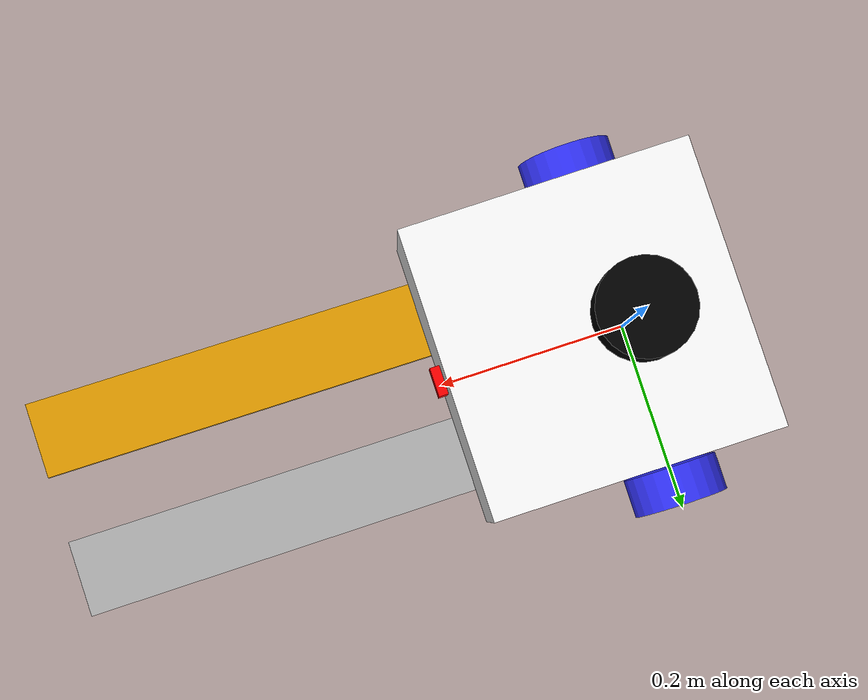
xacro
<?xml version="1.0"?>
<robot xmlns:xacro="http://www.ros.org/wiki/xacro"  name="robot">

    <xacro:include filename="robot_core.xacro" />

    <xacro:include filename="gazebo_control.xacro" />

    <xacro:include filename="lidar.xacro" />
    <xacro:include filename="camera.xacro" />

</robot>

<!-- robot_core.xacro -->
<robot xmlns:xacro="http://www.ros.org/wiki/xacro" >

    <xacro:include filename="inertial_macros.xacro"/>

    <material name="white">
        <color rgba="1 1 1 1" />
    </material>

    <material name="orange">
        <color rgba="1 0.3 0.1 1"/>
    </material>

    <material name="blue">
        <color rgba="0.2 0.2 1 1"/>
    </material>

    <material name="black">
        <color rgba="0 0 0 1"/>
    </material>

    <material name="red">
        <color rgba="1 0 0 1"/>
    </material>

    <!-- BASE LINK -->

    <link name="base_link">

    </link>

     <!-- BASE_FOOTPRINT LINK -->

    <joint name="base_footprint_joint" type="fixed">
        <parent link="base_link"/>
        <child link="base_footprint"/>
        <origin xyz="0 0 0" rpy="0 0 0"/>
    </joint>

    <link name="base_footprint">
    </link>

    <!-- CHASSIS LINK -->

    <joint name="chassis_joint" type="fixed">
        <parent link="base_link"/>
        <child link="chassis"/>
        <origin xyz="-0.1 0 0"/>
    </joint>

    <link name="chassis">
        <visual>
            <origin xyz="0.15 0 0.075"/>
            <geometry>
                <box size="0.3 0.3 0.15"/>
            </geometry>
            <material name="white"/>
        </visual>
        <collision>
            <origin xyz="0.15 0 0.075"/>
            <geometry>
                <box size="0.3 0.3 0.15"/>
            </geometry>
        </collision>
        <xacro:inertial_box mass="10" x="0.3" y="0.3" z="0.15">
            <origin xyz="0.15 0 0.075" rpy="0 0 0"/>
        </xacro:inertial_box>
    </link>

    <gazebo reference="chassis">
        <material>Gazebo/White</material>
    </gazebo>

    <!-- LEFT WHEEL LINK -->

    <joint name="left_wheel_joint" type="continuous">
        <parent link="base_link"/>
        <child link="left_wheel"/>
        <origin xyz="0 0.175 0" rpy="-${pi/2} 0 0" />
        <axis xyz="0 0 1"/>
    </joint>

    <link name="left_wheel">
        <visual>
            <geometry>
                <cylinder radius="0.05" length="0.04"/>
            </geometry>
            <material name="blue"/>
        </visual>
        <collision>
            <geometry>
                <cylinder radius="0.05" length="0.04"/>
            </geometry>
        </collision>
        <xacro:inertial_cylinder mass="0.1" length="0.04" radius="0.05">
            <origin xyz="0 0 0" rpy="0 0 0"/>
        </xacro:inertial_cylinder>
    </link>

    <gazebo reference="left_wheel">
        <material>Gazebo/Blue</material>
    </gazebo>

    <!-- RIGHT WHEEL LINK -->

    <joint name="right_wheel_joint" type="continuous">
        <parent link="base_link"/>
        <child link="right_wheel"/>
        <origin xyz="0 -0.175 0" rpy="${pi/2} 0 0" />
        <axis xyz="0 0 -1"/>
    </joint>

    <link name="right_wheel">
        <visual>
            <geometry>
                <cylinder radius="0.05" length="0.04"/>
            </geometry>
            <material name="blue"/>
        </visual>
        <collision>
            <geometry>
                <cylinder radius="0.05" length="0.04"/>
            </geometry>
        </collision>
        <xacro:inertial_cylinder mass="0.1" length="0.04" radius="0.05">
            <origin xyz="0 0 0" rpy="0 0 0"/>
        </xacro:inertial_cylinder>
    </link>

    <gazebo reference="right_wheel">
        <material>Gazebo/Blue</material>
    </gazebo>

    <!-- CASTER WHEEL LINK -->

    <joint name="caster_wheel_joint" type="fixed">
        <parent link="chassis"/>
        <child link="caster_wheel"/>
        <origin xyz="0.24 0 -0.01"/>
    </joint>

    <link name="caster_wheel">
        <visual>
            <geometry>
                <sphere radius="0.05"/>
            </geometry>
            <material name="black"/>
        </visual>
        <collision>
            <geometry>
                <sphere radius="0.05"/>
            </geometry>
        </collision>
        <xacro:inertial_sphere mass="5" radius="0.05">
            <origin xyz="0 0 0" rpy="0 0 0"/>
        </xacro:inertial_sphere>
    </link>

    <gazebo reference="caster_wheel">
        <material>Gazebo/Black</material>
        <mu1 value="0.001"/>
        <mu2 value="0.001"/>
    </gazebo>

    <link name="actuator_main_link">
        <inertial>
            <mass value="0.4"/>
            <origin xyz="0 0 0"/>
            <inertia ixx="0.2" iyy="0.2" izz="0.2" ixy="0" ixz="0" iyz="0"/>
        </inertial>
    </link>

    <!-- Prismatic Joint (Moves the Actuator as One Unit) -->
    <joint name="linear_actuator" type="prismatic">
        <parent link="base_link"/>
        <child link="actuator_main_link"/>
        <origin xyz="0.37 0 -0.01" rpy="0 ${-0.1} 0"/>
        <axis xyz="0 0 1"/>  <!-- Moves in X-direction -->
        <limit lower="0" upper="0.2" effort="10.0" velocity="0.5"/>
    </joint>

    <!-- Actuator Link 1 (Fixed to Main Actuator) -->
    <link name="actuator_link">
        <inertial>
            <mass value="0.2"/>
            <origin xyz="0 0 0"/>
            <inertia ixx="0.1" iyy="0.1" izz="0.1" ixy="0" ixz="0" iyz="0"/>
        </inertial>
        <visual>
            <geometry>
                <box size="0.5 0.08 0.01"/>
            </geometry>
        </visual>
        <collision>
            <geometry>
                <box size="0.5 0.08 0.01"/>
            </geometry>
        </collision>
        <xacro:inertial_box mass="0.2" x="0.5" y="0.08" z="0.01">
            <origin xyz="0 0 0" rpy="0 0 0"/>
        </xacro:inertial_box>
    </link>

    <joint name="fixed_actuator1" type="fixed">
        <parent link="actuator_main_link"/>
        <child link="actuator_link"/>
        <origin xyz="0 0.075 0"/>
    </joint>
    <gazebo reference="fixed_actuator1">
        <material>Gazebo/Blue</material>
    </gazebo>

    <!-- Actuator Link 2 (Fixed to Main Actuator) -->
    <link name="actuator_link2">
        <inertial>
            <mass value="0.2"/>
            <origin xyz="0 0 0"/>
            <inertia ixx="0.1" iyy="0.1" izz="0.1" ixy="0" ixz="0" iyz="0"/>
        </inertial>
        <visual>
            <geometry>
                <box size="0.5 0.08 0.01"/>
            </geometry>
        </visual>
        <collision>
            <geometry>
                <box size="0.5 0.08 0.01"/>
            </geometry>
        </collision>
        <xacro:inertial_box mass="0.2" x="0.5" y="0.08" z="0.01">
            <origin xyz="0 0 0" rpy="0 0 0"/>
        </xacro:inertial_box>
    </link>

    <joint name="fixed_actuator2" type="fixed">
        <parent link="actuator_main_link"/>
        <child link="actuator_link2"/>
        <origin xyz="0 -0.075 0"/>
    </joint>
    <gazebo reference="fixed_actuator2">
        <material>Gazebo/Blue</material>
    </gazebo>

    <ros2_control name="GazeboSystem" type="system">
    <hardware>
        <plugin>gazebo_ros2_control/GazeboSystem</plugin>
    </hardware>
    <joint name="linear_actuator">
        <command_interface name="position">
            <param name='min'>0</param>
            <param name='max'>0.5</param>
        </command_interface>
        <state_interface name="position">
            <param name="initial_value">0</param>
        </state_interface>
        <state_interface name="velocity"/>
        <state_interface name="effort"/>
    </joint>
    </ros2_control>
    <gazebo>
        <plugin filename="libgazebo_ros2_control.so" name="gazebo_ros2_control">
            <parameters>$(find articubot_one)/config/control_arm.yaml</parameters>
        </plugin>
    </gazebo>
</robot>

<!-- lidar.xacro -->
<robot xmlns:xacro="http://www.ros.org/wiki/xacro" >

    <joint name="laser_joint" type="fixed">
        <parent link="chassis"/>
        <child link="laser_frame"/>
        <origin xyz="0.1 0 0.175" rpy="0 0 0"/>
    </joint>

    <link name="laser_frame">
    <visual>
        <geometry>
            <cylinder radius="0.05" length="0.04"/>
        </geometry>
        <material name="black"/>
    </visual>
    <collision>
        <geometry>
            <cylinder radius="0.05" length="0.04"/>
        </geometry>
    </collision>
    <xacro:inertial_cylinder mass="0.1" length="0.04" radius="0.05">
        <origin xyz="0 0 0" rpy="0 0 0"/>
    </xacro:inertial_cylinder>
</link>
<gazebo reference="laser_frame">
    <material>Gazebo/Red</material>

    <sensor name="laser" type="ray">
    <pose> 0 0 0 0 0 0 </pose>
    <visualize>True</visualize>
    <update_rate>10</update_rate>
    <ray>
    <scan>
        <horizontal>
            <samples>360</samples>
            <min_angle>-3.14</min_angle>
            <max_angle>3.14</max_angle>
        </horizontal>
    </scan>
    <range>
        <min>0.75</min>
        <max>6</max>
    </range>
</ray>
    <plugin name="laser_controller" filename="libgazebo_ros_ray_sensor.so">
    <ros>
        <argument>~/out:=scan</argument>
    </ros>
    <output_type>sensor_msgs/LaserScan</output_type>
    <frame_name>laser_frame</frame_name>
</plugin>
</sensor>
</gazebo>
</robot>

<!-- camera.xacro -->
<robot xmlns:xacro="http://www.ros.org/wiki/xacro" >

    <joint name="camera_joint" type="fixed">
        <parent link="chassis"/>
        <child link="camera_link"/>
        <origin xyz="0.305 0 0.08" rpy="0 0 0"/>
    </joint>

    <link name="camera_link">
        <visual>
            <geometry>
                <box size="0.010 0.03 0.03"/>
            </geometry>
            <material name="red"/>
        </visual>
    </link>

    <joint name="camera_optical_joint" type="fixed">
        <parent link="camera_link"/>
        <child link="camera_link_optical"/>
        <origin xyz="0 0 0" rpy="${-pi/2} 0 ${-pi/2}"/>
    </joint>

    <link name="camera_link_optical"></link>

    <gazebo reference="camera_link">
        <material>Gazebo/Red</material>

        <sensor name="camera" type="camera">
            <pose> 0 0 0 0 0 0 </pose>
            <visualize>false</visualize>
            <update_rate>10</update_rate>
            <camera>
                <horizontal_fov>1.089</horizontal_fov>
                <image>
                    <format>R8G8B8</format>
                    <width>640</width>
                    <height>480</height>
                </image>
                <clip>
                    <near>0.05</near>
                    <far>8.0</far>
                </clip>
            </camera>
            <plugin name="camera_controller" filename="libgazebo_ros_camera.so">
                <frame_name>camera_link_optical</frame_name>
            </plugin>
        </sensor>
    </gazebo>

</robot>
